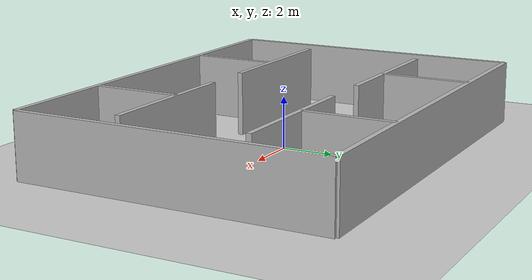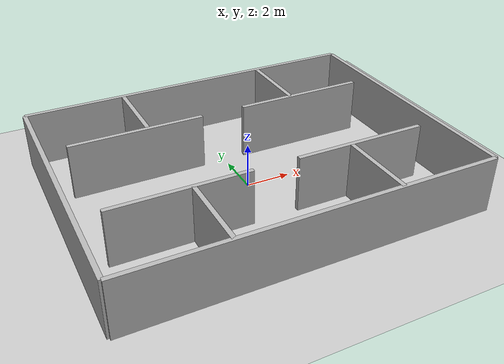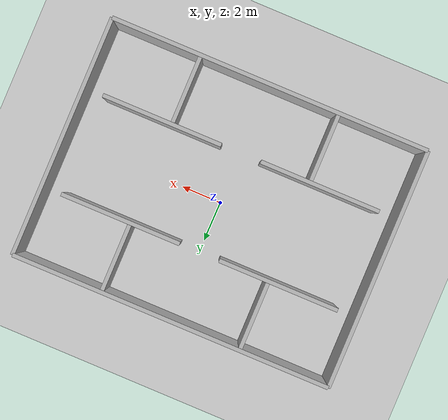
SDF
<?xml version="1.0"?>
<sdf version="1.6">
  <world name="office_fasttrack">

    <include>
      <uri>model://ground_plane</uri>
    </include>

    <include>
      <uri>model://sun</uri>
    </include>

    <scene>
      <shadows>false</shadows>
    </scene>

    <!-- Outer walls -->

    <model name="north_wall">
      <static>true</static>
      <pose>0 6 1.25 0 0 0</pose>
      <link name="link">
        <collision name="collision">
          <geometry>
            <box><size>16 0.2 2.5</size></box>
          </geometry>
        </collision>
        <visual name="visual">
          <geometry>
            <box><size>16 0.2 2.5</size></box>
          </geometry>
        </visual>
      </link>
    </model>

    <model name="south_wall">
      <static>true</static>
      <pose>0 -6 1.25 0 0 0</pose>
      <link name="link">
        <collision name="collision">
          <geometry>
            <box><size>16 0.2 2.5</size></box>
          </geometry>
        </collision>
        <visual name="visual">
          <geometry>
            <box><size>16 0.2 2.5</size></box>
          </geometry>
        </visual>
      </link>
    </model>

    <model name="west_wall">
      <static>true</static>
      <pose>-8 0 1.25 0 0 0</pose>
      <link name="link">
        <collision name="collision">
          <geometry>
            <box><size>0.2 12 2.5</size></box>
          </geometry>
        </collision>
        <visual name="visual">
          <geometry>
            <box><size>0.2 12 2.5</size></box>
          </geometry>
        </visual>
      </link>
    </model>

    <model name="east_wall">
      <static>true</static>
      <pose>8 0 1.25 0 0 0</pose>
      <link name="link">
        <collision name="collision">
          <geometry>
            <box><size>0.2 12 2.5</size></box>
          </geometry>
        </collision>
        <visual name="visual">
          <geometry>
            <box><size>0.2 12 2.5</size></box>
          </geometry>
        </visual>
      </link>
    </model>

    <!-- Internal walls with central lobby -->

    <model name="north_left">
      <static>true</static>
      <pose>-4 2.5 1.25 0 0 0</pose>
      <link name="link">
        <collision name="collision">
          <geometry>
            <box><size>6 0.2 2.5</size></box>
          </geometry>
        </collision>
        <visual name="visual">
          <geometry>
            <box><size>6 0.2 2.5</size></box>
          </geometry>
        </visual>
      </link>
    </model>

    <model name="north_right">
      <static>true</static>
      <pose>4 2.5 1.25 0 0 0</pose>
      <link name="link">
        <collision name="collision">
          <geometry>
            <box><size>6 0.2 2.5</size></box>
          </geometry>
        </collision>
        <visual name="visual">
          <geometry>
            <box><size>6 0.2 2.5</size></box>
          </geometry>
        </visual>
      </link>
    </model>

    <model name="south_left">
      <static>true</static>
      <pose>-4 -2.5 1.25 0 0 0</pose>
      <link name="link">
        <collision name="collision">
          <geometry>
            <box><size>6 0.2 2.5</size></box>
          </geometry>
        </collision>
        <visual name="visual">
          <geometry>
            <box><size>6 0.2 2.5</size></box>
          </geometry>
        </visual>
      </link>
    </model>

    <model name="south_right">
      <static>true</static>
      <pose>4 -2.5 1.25 0 0 0</pose>
      <link name="link">
        <collision name="collision">
          <geometry>
            <box><size>6 0.2 2.5</size></box>
          </geometry>
        </collision>
        <visual name="visual">
          <geometry>
            <box><size>6 0.2 2.5</size></box>
          </geometry>
        </visual>
      </link>
    </model>

    <!-- Vertical dividers -->

    <model name="west_upper_divider">
      <static>true</static>
      <pose>-3.5 4.25 1.25 0 0 0</pose>
      <link name="link">
        <collision name="collision">
          <geometry>
            <box><size>0.2 3.5 2.5</size></box>
          </geometry>
        </collision>
        <visual name="visual">
          <geometry>
            <box><size>0.2 3.5 2.5</size></box>
          </geometry>
        </visual>
      </link>
    </model>

    <model name="east_upper_divider">
      <static>true</static>
      <pose>3.5 4.25 1.25 0 0 0</pose>
      <link name="link">
        <collision name="collision">
          <geometry>
            <box><size>0.2 3.5 2.5</size></box>
          </geometry>
        </collision>
        <visual name="visual">
          <geometry>
            <box><size>0.2 3.5 2.5</size></box>
          </geometry>
        </visual>
      </link>
    </model>

    <model name="west_lower_divider">
      <static>true</static>
      <pose>-3.5 -4.25 1.25 0 0 0</pose>
      <link name="link">
        <collision name="collision">
          <geometry>
            <box><size>0.2 3.5 2.5</size></box>
          </geometry>
        </collision>
        <visual name="visual">
          <geometry>
            <box><size>0.2 3.5 2.5</size></box>
          </geometry>
        </visual>
      </link>
    </model>

    <model name="east_lower_divider">
      <static>true</static>
      <pose>3.5 -4.25 1.25 0 0 0</pose>
      <link name="link">
        <collision name="collision">
          <geometry>
            <box><size>0.2 3.5 2.5</size></box>
          </geometry>
        </collision>
        <visual name="visual">
          <geometry>
            <box><size>0.2 3.5 2.5</size></box>
          </geometry>
        </visual>
      </link>
    </model>

  </world>
</sdf>
